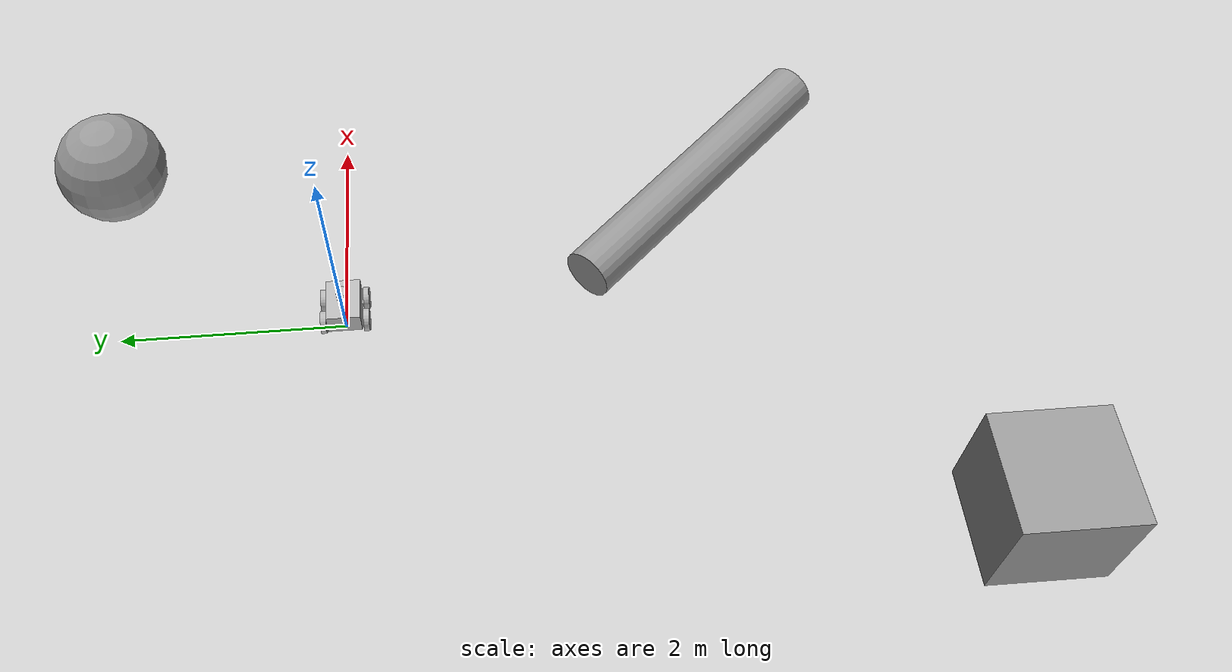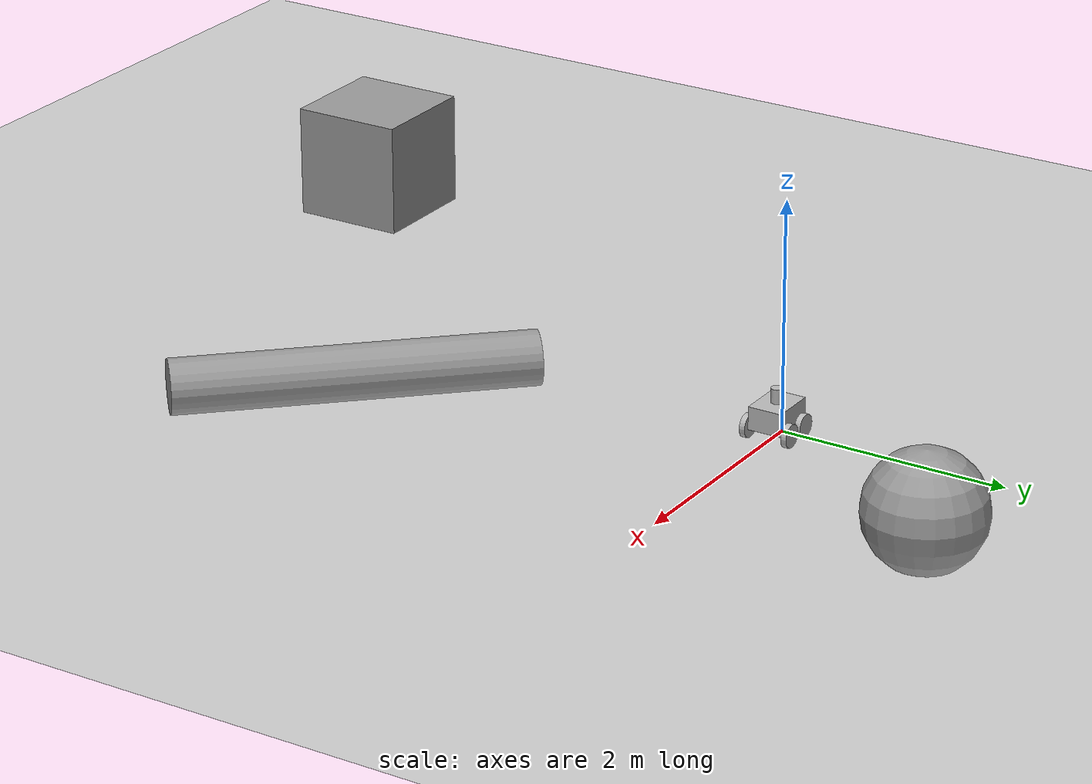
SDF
<sdf version="1.7">
 <world name="default">
  <light name="sun" type="directional">
   <pose>0 0 10 0 -0 0</pose>
   <diffuse>0.8 0.8 0.8 1</diffuse>
   <specular>0.2 0.2 0.2 1</specular>
   <attenuation>
    <range>1000</range>
    <constant>0.9</constant>
    <linear>0.01</linear>
    <quadratic>0.001</quadratic>
   </attenuation>
   <direction>-0.5 0.1 -0.9</direction>
   <spot><inner_angle>0</inner_angle><outer_angle>0</outer_angle><falloff>0</falloff></spot>
  </light>
  <model name="ground_plane">
   <static>1</static>
   <link name="link">
    <collision name="collision">
     <geometry><plane><normal>0 0 1</normal><size>100 100</size></plane></geometry>
     <surface>
      <contact><collide_bitmask>65535</collide_bitmask></contact>
      <friction><ode><mu>100</mu><mu2>50</mu2></ode></friction>
     </surface>
    </collision>
    <visual name="visual">
     <cast_shadows>0</cast_shadows>
     <geometry><plane><normal>0 0 1</normal><size>100 100</size></plane></geometry>
     <material>
      <script><uri>file://media/materials/scripts/gazebo.material</uri><name>Gazebo/Grey</name></script>
     </material>
    </visual>
   </link>
  </model>
  <gravity>0 0 -9.8</gravity>
  <magnetic_field>6e-06 2.3e-05 -4.2e-05</magnetic_field>
  <atmosphere type="adiabatic"/>
  <physics type="ode">
   <max_step_size>0.001</max_step_size>
   <real_time_factor>1</real_time_factor>
   <real_time_update_rate>1000</real_time_update_rate>
  </physics>
  <scene><ambient>0.4 0.4 0.4 1</ambient><background>0.7 0.7 0.7 1</background><shadows>1</shadows></scene>
  <audio><device>default</device></audio>
  <spherical_coordinates>
   <surface_model>EARTH_WGS84</surface_model>
   <latitude_deg>0</latitude_deg>
   <longitude_deg>0</longitude_deg>
   <elevation>0</elevation>
   <heading_deg>0</heading_deg>
  </spherical_coordinates>
  <model name="my_bot">
   <link name="base_link">
    <inertial>
     <pose>0.1 0 0.116667 0 -0 0</pose>
     <mass>0.6</mass>
     <inertia>
      <ixx>0.00777083</ixx>
      <ixy>0</ixy>
      <ixz>0</ixz>
      <iyy>0.0106875</iyy>
      <iyz>0</iyz>
      <izz>0.0124167</izz>
     </inertia>
    </inertial>
    <collision name="base_link_fixed_joint_lump__chassis_collision">
     <pose>0.1 0 0.1 0 -0 0</pose>
     <geometry><box><size>0.4 0.3 0.2</size></box></geometry>
    </collision>
    <collision name="base_link_fixed_joint_lump__lazer_frame_collision_1">
     <pose>0.1 0 0.2 0 -0 0</pose>
     <geometry><cylinder><length>0.25</length><radius>0.2</radius></cylinder></geometry>
    </collision>
    <visual name="base_link_fixed_joint_lump__chassis_visual">
     <pose>0.1 0 0.1 0 -0 0</pose>
     <geometry><box><size>0.4 0.3 0.2</size></box></geometry>
    </visual>
    <visual name="base_link_fixed_joint_lump__lazer_frame_visual_1">
     <pose>0.1 0 0.2 0 -0 0</pose>
     <geometry><cylinder><length>0.25</length><radius>0.05</radius></cylinder></geometry>
    </visual>
    <sensor name="laser" type="ray">
     <visualize>1</visualize>
     <update_rate>10</update_rate>
     <ray>
      <scan>
       <horizontal>
        <samples>360</samples>
        <min_angle>-3.14</min_angle>
        <max_angle>3.14</max_angle>
        <resolution>1</resolution>
       </horizontal>
       <vertical><samples>1</samples><min_angle>0</min_angle><max_angle>0</max_angle></vertical>
      </scan>
      <range><min>0.3</min><max>12</max></range>
     </ray>
     <plugin name="laser_controller" filename="libgazebo_ros_ray_sensor.so">
      <ros><argument>~/out:=scan</argument></ros>
      <output_type>sensor_msgs/LaserScan</output_type>
      <frame_name>lazer_frame</frame_name>
     </plugin>
     <pose>0.1 0 0.2 0 -0 0</pose>
    </sensor>
   </link>
   <joint name="front_left_wheel_joint" type="revolute">
    <pose relative_to="base_link">0.23 0.19 0 1.5708 -0 0</pose>
    <parent>base_link</parent>
    <child>front_left_wheel</child>
    <axis>
     <xyz>0 0 1</xyz>
     <limit><lower>-1e+16</lower><upper>1e+16</upper></limit>
     <dynamics><spring_reference>0</spring_reference><spring_stiffness>0</spring_stiffness></dynamics>
    </axis>
   </joint>
   <link name="front_left_wheel">
    <pose relative_to="front_left_wheel_joint">0 0 0 0 -0 0</pose>
    <inertial>
     <mass>0.2</mass>
     <inertia>
      <ixx>0.000541667</ixx>
      <ixy>0</ixy>
      <ixz>0</ixz>
      <iyy>0.000541667</iyy>
      <iyz>0</iyz>
      <izz>0.001</izz>
     </inertia>
    </inertial>
    <collision name="front_left_wheel_collision">
     <geometry><cylinder><length>0.05</length><radius>0.1</radius></cylinder></geometry>
    </collision>
    <visual name="front_left_wheel_visual">
     <geometry><cylinder><length>0.05</length><radius>0.1</radius></cylinder></geometry>
    </visual>
   </link>
   <joint name="front_right_wheel_joint" type="revolute">
    <pose relative_to="base_link">0.23 -0.19 0 1.5708 -0 0</pose>
    <parent>base_link</parent>
    <child>front_right_wheel</child>
    <axis>
     <xyz>0 0 -1</xyz>
     <limit><lower>-1e+16</lower><upper>1e+16</upper></limit>
     <dynamics><spring_reference>0</spring_reference><spring_stiffness>0</spring_stiffness></dynamics>
    </axis>
   </joint>
   <link name="front_right_wheel">
    <pose relative_to="front_right_wheel_joint">0 0 0 0 -0 0</pose>
    <inertial>
     <mass>0.2</mass>
     <inertia>
      <ixx>0.000541667</ixx>
      <ixy>0</ixy>
      <ixz>0</ixz>
      <iyy>0.000541667</iyy>
      <iyz>0</iyz>
      <izz>0.001</izz>
     </inertia>
    </inertial>
    <collision name="front_right_wheel_collision">
     <geometry><cylinder><length>0.05</length><radius>0.1</radius></cylinder></geometry>
    </collision>
    <visual name="front_right_wheel_visual">
     <geometry><cylinder><length>0.05</length><radius>0.1</radius></cylinder></geometry>
    </visual>
   </link>
   <joint name="rear_left_wheel_joint" type="revolute">
    <pose relative_to="base_link">0 0.19 0 1.5708 -0 0</pose>
    <parent>base_link</parent>
    <child>rear_left_wheel</child>
    <axis>
     <xyz>0 0 1</xyz>
     <limit><lower>-1e+16</lower><upper>1e+16</upper></limit>
     <dynamics><spring_reference>0</spring_reference><spring_stiffness>0</spring_stiffness></dynamics>
    </axis>
   </joint>
   <link name="rear_left_wheel">
    <pose relative_to="rear_left_wheel_joint">0 0 0 0 -0 0</pose>
    <inertial>
     <mass>0.2</mass>
     <inertia>
      <ixx>0.000541667</ixx>
      <ixy>0</ixy>
      <ixz>0</ixz>
      <iyy>0.000541667</iyy>
      <iyz>0</iyz>
      <izz>0.001</izz>
     </inertia>
    </inertial>
    <collision name="rear_left_wheel_collision">
     <geometry><cylinder><length>0.05</length><radius>0.1</radius></cylinder></geometry>
    </collision>
    <visual name="rear_left_wheel_visual">
     <geometry><cylinder><length>0.05</length><radius>0.1</radius></cylinder></geometry>
    </visual>
   </link>
   <joint name="rear_right_wheel_joint" type="revolute">
    <pose relative_to="base_link">0 -0.19 0 1.5708 -0 0</pose>
    <parent>base_link</parent>
    <child>rear_right_wheel</child>
    <axis>
     <xyz>0 0 -1</xyz>
     <limit><lower>-1e+16</lower><upper>1e+16</upper></limit>
     <dynamics><spring_reference>0</spring_reference><spring_stiffness>0</spring_stiffness></dynamics>
    </axis>
   </joint>
   <link name="rear_right_wheel">
    <pose relative_to="rear_right_wheel_joint">0 0 0 0 -0 0</pose>
    <inertial>
     <mass>0.2</mass>
     <inertia>
      <ixx>0.000541667</ixx>
      <ixy>0</ixy>
      <ixz>0</ixz>
      <iyy>0.000541667</iyy>
      <iyz>0</iyz>
      <izz>0.001</izz>
     </inertia>
    </inertial>
    <collision name="rear_right_wheel_collision">
     <geometry><cylinder><length>0.05</length><radius>0.1</radius></cylinder></geometry>
    </collision>
    <visual name="rear_right_wheel_visual">
     <geometry><cylinder><length>0.05</length><radius>0.1</radius></cylinder></geometry>
    </visual>
   </link>
   <static>0</static>
   <plugin name="diff_drive_back" filename="libgazebo_ros_diff_drive.so">
    <left_joint>rear_left_wheel_joint</left_joint>
    <right_joint>rear_right_wheel_joint</right_joint>
    <wheel_separation>0.38</wheel_separation>
    <wheel_diameter>0.2</wheel_diameter>
    <max_wheel_torque>200</max_wheel_torque>
    <max_wheel_acceleration>10.0</max_wheel_acceleration>
    <odometry_frame>odom</odometry_frame>
    <robot_base_frame>base_link</robot_base_frame>
    <publish_odom>1</publish_odom>
    <publish_odom_tf>1</publish_odom_tf>
    <publish_wheel_tf>1</publish_wheel_tf>
    <command_topic>cmd_vel</command_topic>
   </plugin>
   <plugin name="diff_drive_front" filename="libgazebo_ros_diff_drive.so">
    <left_joint>front_left_wheel_joint</left_joint>
    <right_joint>front_right_wheel_joint</right_joint>
    <wheel_separation>0.38</wheel_separation>
    <wheel_diameter>0.2</wheel_diameter>
    <max_wheel_torque>200</max_wheel_torque>
    <max_wheel_acceleration>10.0</max_wheel_acceleration>
    <odometry_frame>odom</odometry_frame>
    <robot_base_frame>base_link</robot_base_frame>
    <publish_odom>1</publish_odom>
    <publish_odom_tf>1</publish_odom_tf>
    <publish_wheel_tf>1</publish_wheel_tf>
   </plugin>
   <pose>9.7e-05 -3.7e-05 0.1 -1e-06 -0 0.001363</pose>
  </model>
  <model name="unit_sphere">
   <pose>1.60158 2.11281 0.5 0 -0 0</pose>
   <link name="link">
    <inertial>
     <mass>1</mass>
     <inertia><ixx>0.1</ixx><ixy>0</ixy><ixz>0</ixz><iyy>0.1</iyy><iyz>0</iyz><izz>0.1</izz></inertia>
    </inertial>
    <collision name="collision"><geometry><sphere><radius>0.5</radius></sphere></geometry></collision>
    <visual name="visual">
     <geometry><sphere><radius>0.5</radius></sphere></geometry>
     <material>
      <script><name>Gazebo/Grey</name><uri>file://media/materials/scripts/gazebo.material</uri></script>
     </material>
    </visual>
   </link>
  </model>
  <model name="unit_box">
   <pose>-2.33601 -5.53195 0.499995 0 1e-05 0</pose>
   <link name="link">
    <inertial>
     <mass>1</mass>
     <inertia>
      <ixx>0.166667</ixx>
      <ixy>0</ixy>
      <ixz>0</ixz>
      <iyy>0.166667</iyy>
      <iyz>0</iyz>
      <izz>0.166667</izz>
     </inertia>
    </inertial>
    <collision name="collision"><geometry><box><size>1 1 1</size></box></geometry></collision>
    <visual name="visual">
     <geometry><box><size>1 1 1</size></box></geometry>
     <material>
      <script><name>Gazebo/Grey</name><uri>file://media/materials/scripts/gazebo.material</uri></script>
     </material>
    </visual>
   </link>
  </model>
  <model name="unit_cylinder">
   <pose>1.27658 -3.29019 0.23537 -1.57079 0.000176 0.752271</pose>
   <link name="link">
    <inertial>
     <mass>1</mass>
     <inertia><ixx>0.145833</ixx><ixy>0</ixy><ixz>0</ixz><iyy>0.145833</iyy><iyz>0</iyz><izz>0.125</izz></inertia>
    </inertial>
    <collision name="collision">
     <geometry><cylinder><radius>0.235387</radius><length>3.05374</length></cylinder></geometry>
    </collision>
    <visual name="visual">
     <geometry><cylinder><radius>0.235387</radius><length>3.05374</length></cylinder></geometry>
     <material>
      <script><name>Gazebo/Grey</name><uri>file://media/materials/scripts/gazebo.material</uri></script>
     </material>
    </visual>
   </link>
  </model>
 </world>
</sdf>
